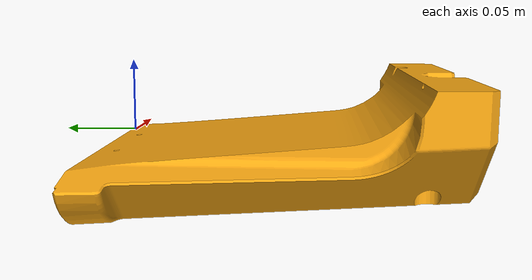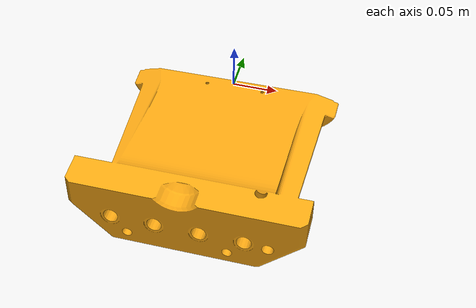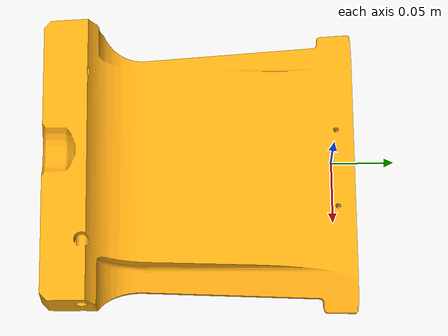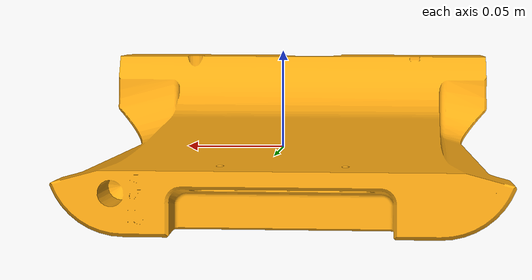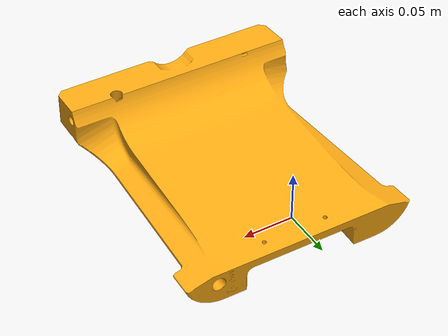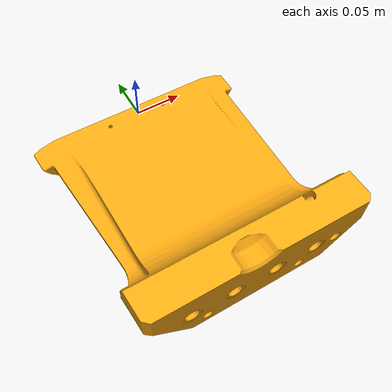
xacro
<?xml version="1.0" encoding="utf-8"?>
<robot xmlns:xacro="http://www.ros.org/wiki/xacro" name="mould">
    <link name="mould">
      <visual>
        <origin xyz="0 0.02 0.16" rpy="0 ${pi/2} ${pi}"/>
        <geometry>
          <mesh filename="package://franka_description/meshes/visual/mold.dae"/>
        </geometry>
      </visual>
      <collision>
        <geometry>
          <mesh filename="package://franka_description/meshes/visual/mold.dae"/>
        </geometry>
      </collision>
    </link>
</robot>
